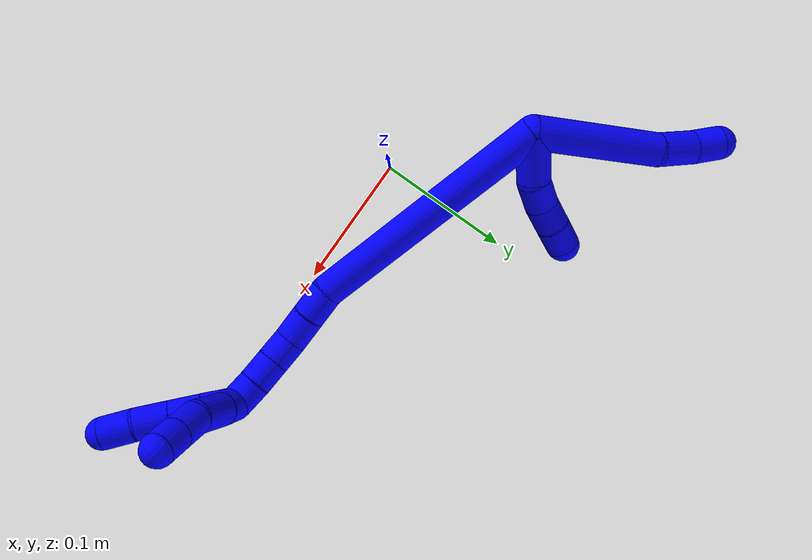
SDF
<sdf version="1.7">
 <world name="default">
  <model name="photoneo_s_sensor">
   <static>1</static>
   <pose>0 0 2 1.57079 1.57079 3.14159</pose>
   <link name="link">
    <inertial><mass>0.1</mass></inertial>
    <sensor name="sensor" type="depth">
     <update_rate>30</update_rate>
     <camera>
      <horizontal_fov>1.22</horizontal_fov>
      <image><width>1920</width><height>1200</height><format>B8G8R8</format></image>
      <clip><near>0.1</near><far>4</far></clip>
      <depth_camera><output>points</output></depth_camera>
     </camera>
     <plugin name="camera_plugin" filename="libgazebo_ros_depth_camera.so">
      <baseline>0.2</baseline>
      <alwaysOn>1</alwaysOn>
      <updateRate>0.0</updateRate>
      <cameraName>camera_ir</cameraName>
      <imageTopicName>/camera/color/image_raw</imageTopicName>
      <cameraInfoTopicName>/camera/color/camera_info</cameraInfoTopicName>
      <depthImageTopicName>/camera/depth/image_raw</depthImageTopicName>
      <depthImageCameraInfoTopicName>/camera/depth/camera_info</depthImageCameraInfoTopicName>
      <pointCloudTopicName>/camera/depth/points</pointCloudTopicName>
      <frameName>fr_optical</frameName>
      <pointCloudCutoff>0.1</pointCloudCutoff>
      <pointCloudCutoffMax>2.0</pointCloudCutoffMax>
      <distortionK1>0</distortionK1>
      <distortionK2>0</distortionK2>
      <distortionK3>0</distortionK3>
      <distortionT1>0</distortionT1>
      <distortionT2>0</distortionT2>
      <CxPrime>0</CxPrime>
      <Cx>0</Cx>
      <Cy>0</Cy>
      <focalLength>0</focalLength>
      <hackBaseline>0</hackBaseline>
     </plugin>
    </sensor>
   </link>
  </model>
  <model name="bin">
   <static>1</static>
   <link name="bottom">
    <collision name="collision-bottom">
     <pose>0 0 -0.01 0 -0 0</pose>
     <geometry><box><size>0.8 0.6 0.02</size></box></geometry>
     <surface>
      <friction><ode><mu>100</mu><mu2>100</mu2></ode></friction>
      <contact><collide_bitmask>65535</collide_bitmask></contact>
     </surface>
    </collision>
   </link>
   <link name="west_wall">
    <collision name="collision-west_wall">
     <pose>-0.41 0 0.1 0 -0 0</pose>
     <geometry><box><size>0.02 0.6 0.2</size></box></geometry>
     <surface>
      <friction><ode><mu>100</mu><mu2>100</mu2></ode></friction>
      <contact><collide_bitmask>65535</collide_bitmask></contact>
     </surface>
    </collision>
   </link>
   <link name="east_wall">
    <collision name="collision-east_wall">
     <pose>0.41 0 0.1 0 -0 0</pose>
     <geometry><box><size>0.02 0.6 0.2</size></box></geometry>
     <surface>
      <friction><ode><mu>100</mu><mu2>100</mu2></ode></friction>
      <contact><collide_bitmask>65535</collide_bitmask></contact>
     </surface>
    </collision>
   </link>
   <link name="south_wall">
    <collision name="collision-south_wall">
     <pose>0 -0.31 0.1 0 -0 0</pose>
     <geometry><box><size>0.8 0.02 0.2</size></box></geometry>
     <surface>
      <friction><ode><mu>100</mu><mu2>100</mu2></ode></friction>
      <contact><collide_bitmask>65535</collide_bitmask></contact>
     </surface>
    </collision>
   </link>
   <link name="north_wall">
    <collision name="collision-north_wall">
     <pose>0 0.31 0.1 0 -0 0</pose>
     <geometry><box><size>0.8 0.02 0.2</size></box></geometry>
     <surface>
      <friction><ode><mu>100</mu><mu2>100</mu2></ode></friction>
      <contact><collide_bitmask>65535</collide_bitmask></contact>
     </surface>
    </collision>
   </link>
  </model>
  <model name="1">
   <static>0</static>
   <link name="1">
    <collision name="collision-cylinder-e_1_2_8">
     <pose>-0.015491 0.024906 0.03885 -0.570083 -0.323855 0.095661</pose>
     <geometry><cylinder><radius>0.0125</radius><length>0.097358</length></cylinder></geometry>
     <surface>
      <friction><ode><mu>1.16</mu><mu2>1.16</mu2><slip1>0</slip1><slip2>0</slip2></ode></friction>
      <contact><ode><kp>1e+06</kp><kd>1</kd><max_vel>0</max_vel><min_depth>0.001</min_depth></ode></contact>
     </surface>
    </collision>
    <visual name="visual-cylinder-e_1_2_8">
     <pose>-0.015491 0.024906 0.03885 -0.570083 -0.323855 0.095661</pose>
     <geometry><cylinder><radius>0.0125</radius><length>0.097358</length></cylinder></geometry>
     <material><ambient>0 0 1 1</ambient></material>
    </visual>
    <collision name="collision-cylinder-e_2_8_9">
     <pose>-0.035697 0.060251 0.087541 -0.814852 -0.317571 0.138</pose>
     <geometry><cylinder><radius>0.0125</radius><length>0.0302</length></cylinder></geometry>
     <surface>
      <friction><ode><mu>1.16</mu><mu2>1.16</mu2><slip1>0</slip1><slip2>0</slip2></ode></friction>
      <contact><ode><kp>1e+06</kp><kd>1</kd><max_vel>0</max_vel><min_depth>0.001</min_depth></ode></contact>
     </surface>
    </collision>
    <visual name="visual-cylinder-e_2_8_9">
     <pose>-0.035697 0.060251 0.087541 -0.814852 -0.317571 0.138</pose>
     <geometry><cylinder><radius>0.0125</radius><length>0.0302</length></cylinder></geometry>
     <material><ambient>0 0 1 1</ambient></material>
    </visual>
    <collision name="collision-cylinder-e_3_9_6">
     <pose>-0.045819 0.077765 0.104208 -0.803369 -0.502799 0.217336</pose>
     <geometry><cylinder><radius>0.0125</radius><length>0.022442</length></cylinder></geometry>
     <surface>
      <friction><ode><mu>1.16</mu><mu2>1.16</mu2><slip1>0</slip1><slip2>0</slip2></ode></friction>
      <contact><ode><kp>1e+06</kp><kd>1</kd><max_vel>0</max_vel><min_depth>0.001</min_depth></ode></contact>
     </surface>
    </collision>
    <visual name="visual-cylinder-e_3_9_6">
     <pose>-0.045819 0.077765 0.104208 -0.803369 -0.502799 0.217336</pose>
     <geometry><cylinder><radius>0.0125</radius><length>0.022442</length></cylinder></geometry>
     <material><ambient>0 0 1 1</ambient></material>
    </visual>
    <collision name="collision-cylinder-e_1_2_10">
     <pose>0.01291 -0.002465 0.01303 0.186995 0.771997 0.076177</pose>
     <geometry><cylinder><radius>0.0125</radius><length>0.037015</length></cylinder></geometry>
     <surface>
      <friction><ode><mu>1.16</mu><mu2>1.16</mu2><slip1>0</slip1><slip2>0</slip2></ode></friction>
      <contact><ode><kp>1e+06</kp><kd>1</kd><max_vel>0</max_vel><min_depth>0.001</min_depth></ode></contact>
     </surface>
    </collision>
    <visual name="visual-cylinder-e_1_2_10">
     <pose>0.01291 -0.002465 0.01303 0.186995 0.771997 0.076177</pose>
     <geometry><cylinder><radius>0.0125</radius><length>0.037015</length></cylinder></geometry>
     <material><ambient>0 0 1 1</ambient></material>
    </visual>
    <collision name="collision-cylinder-e_2_10_11">
     <pose>0.032133 -0.003115 0.035069 -0.19888 0.601834 -0.061905</pose>
     <geometry><cylinder><radius>0.0125</radius><length>0.0223</length></cylinder></geometry>
     <surface>
      <friction><ode><mu>1.16</mu><mu2>1.16</mu2><slip1>0</slip1><slip2>0</slip2></ode></friction>
      <contact><ode><kp>1e+06</kp><kd>1</kd><max_vel>0</max_vel><min_depth>0.001</min_depth></ode></contact>
     </surface>
    </collision>
    <visual name="visual-cylinder-e_2_10_11">
     <pose>0.032133 -0.003115 0.035069 -0.19888 0.601834 -0.061905</pose>
     <geometry><cylinder><radius>0.0125</radius><length>0.0223</length></cylinder></geometry>
     <material><ambient>0 0 1 1</ambient></material>
    </visual>
    <collision name="collision-cylinder-e_3_11_12">
     <pose>0.042526 -0.000275 0.053169 -0.112163 0.419547 -0.023904</pose>
     <geometry><cylinder><radius>0.0125</radius><length>0.020033</length></cylinder></geometry>
     <surface>
      <friction><ode><mu>1.16</mu><mu2>1.16</mu2><slip1>0</slip1><slip2>0</slip2></ode></friction>
      <contact><ode><kp>1e+06</kp><kd>1</kd><max_vel>0</max_vel><min_depth>0.001</min_depth></ode></contact>
     </surface>
    </collision>
    <visual name="visual-cylinder-e_3_11_12">
     <pose>0.042526 -0.000275 0.053169 -0.112163 0.419547 -0.023904</pose>
     <geometry><cylinder><radius>0.0125</radius><length>0.020033</length></cylinder></geometry>
     <material><ambient>0 0 1 1</ambient></material>
    </visual>
    <collision name="collision-cylinder-e_4_12_5">
     <pose>0.051206 0.002717 0.071292 -0.214578 0.461731 -0.050621</pose>
     <geometry><cylinder><radius>0.0125</radius><length>0.020653</length></cylinder></geometry>
     <surface>
      <friction><ode><mu>1.16</mu><mu2>1.16</mu2><slip1>0</slip1><slip2>0</slip2></ode></friction>
      <contact><ode><kp>1e+06</kp><kd>1</kd><max_vel>0</max_vel><min_depth>0.001</min_depth></ode></contact>
     </surface>
    </collision>
    <visual name="visual-cylinder-e_4_12_5">
     <pose>0.051206 0.002717 0.071292 -0.214578 0.461731 -0.050621</pose>
     <geometry><cylinder><radius>0.0125</radius><length>0.020653</length></cylinder></geometry>
     <material><ambient>0 0 1 1</ambient></material>
    </visual>
    <collision name="collision-cylinder-e_1_2_13">
     <pose>0.083445 -0.044527 -0.012601 1.84658 1.06445 1.32324</pose>
     <geometry><cylinder><radius>0.0125</radius><length>0.190834</length></cylinder></geometry>
     <surface>
      <friction><ode><mu>1.16</mu><mu2>1.16</mu2><slip1>0</slip1><slip2>0</slip2></ode></friction>
      <contact><ode><kp>1e+06</kp><kd>1</kd><max_vel>0</max_vel><min_depth>0.001</min_depth></ode></contact>
     </surface>
    </collision>
    <visual name="visual-cylinder-e_1_2_13">
     <pose>0.083445 -0.044527 -0.012601 1.84658 1.06445 1.32324</pose>
     <geometry><cylinder><radius>0.0125</radius><length>0.190834</length></cylinder></geometry>
     <material><ambient>0 0 1 1</ambient></material>
    </visual>
    <collision name="collision-cylinder-e_2_13_14">
     <pose>0.176316 -0.09591 -0.023891 1.38191 0.933424 0.789543</pose>
     <geometry><cylinder><radius>0.0125</radius><length>0.023459</length></cylinder></geometry>
     <surface>
      <friction><ode><mu>1.16</mu><mu2>1.16</mu2><slip1>0</slip1><slip2>0</slip2></ode></friction>
      <contact><ode><kp>1e+06</kp><kd>1</kd><max_vel>0</max_vel><min_depth>0.001</min_depth></ode></contact>
     </surface>
    </collision>
    <visual name="visual-cylinder-e_2_13_14">
     <pose>0.176316 -0.09591 -0.023891 1.38191 0.933424 0.789543</pose>
     <geometry><cylinder><radius>0.0125</radius><length>0.023459</length></cylinder></geometry>
     <material><ambient>0 0 1 1</ambient></material>
    </visual>
    <collision name="collision-cylinder-e_3_14_15">
     <pose>0.195504 -0.109106 -0.021187 1.35439 0.983881 0.813657</pose>
     <geometry><cylinder><radius>0.0125</radius><length>0.023447</length></cylinder></geometry>
     <surface>
      <friction><ode><mu>1.16</mu><mu2>1.16</mu2><slip1>0</slip1><slip2>0</slip2></ode></friction>
      <contact><ode><kp>1e+06</kp><kd>1</kd><max_vel>0</max_vel><min_depth>0.001</min_depth></ode></contact>
     </surface>
    </collision>
    <visual name="visual-cylinder-e_3_14_15">
     <pose>0.195504 -0.109106 -0.021187 1.35439 0.983881 0.813657</pose>
     <geometry><cylinder><radius>0.0125</radius><length>0.023447</length></cylinder></geometry>
     <material><ambient>0 0 1 1</ambient></material>
    </visual>
    <collision name="collision-cylinder-e_4_15_16">
     <pose>0.211563 -0.123522 -0.019413 1.52383 0.66182 0.633478</pose>
     <geometry><cylinder><radius>0.0125</radius><length>0.020494</length></cylinder></geometry>
     <surface>
      <friction><ode><mu>1.16</mu><mu2>1.16</mu2><slip1>0</slip1><slip2>0</slip2></ode></friction>
      <contact><ode><kp>1e+06</kp><kd>1</kd><max_vel>0</max_vel><min_depth>0.001</min_depth></ode></contact>
     </surface>
    </collision>
    <visual name="visual-cylinder-e_4_15_16">
     <pose>0.211563 -0.123522 -0.019413 1.52383 0.66182 0.633478</pose>
     <geometry><cylinder><radius>0.0125</radius><length>0.020494</length></cylinder></geometry>
     <material><ambient>0 0 1 1</ambient></material>
    </visual>
    <collision name="collision-cylinder-e_5_16_17">
     <pose>0.224154 -0.139649 -0.018647 1.52288 0.662856 0.633913</pose>
     <geometry><cylinder><radius>0.0125</radius><length>0.020456</length></cylinder></geometry>
     <surface>
      <friction><ode><mu>1.16</mu><mu2>1.16</mu2><slip1>0</slip1><slip2>0</slip2></ode></friction>
      <contact><ode><kp>1e+06</kp><kd>1</kd><max_vel>0</max_vel><min_depth>0.001</min_depth></ode></contact>
     </surface>
    </collision>
    <visual name="visual-cylinder-e_5_16_17">
     <pose>0.224154 -0.139649 -0.018647 1.52288 0.662856 0.633913</pose>
     <geometry><cylinder><radius>0.0125</radius><length>0.020456</length></cylinder></geometry>
     <material><ambient>0 0 1 1</ambient></material>
    </visual>
    <collision name="collision-cylinder-e_6_17_1">
     <pose>0.237454 -0.155729 -0.018363 1.58344 0.717521 0.725877</pose>
     <geometry><cylinder><radius>0.0125</radius><length>0.02131</length></cylinder></geometry>
     <surface>
      <friction><ode><mu>1.16</mu><mu2>1.16</mu2><slip1>0</slip1><slip2>0</slip2></ode></friction>
      <contact><ode><kp>1e+06</kp><kd>1</kd><max_vel>0</max_vel><min_depth>0.001</min_depth></ode></contact>
     </surface>
    </collision>
    <visual name="visual-cylinder-e_6_17_1">
     <pose>0.237454 -0.155729 -0.018363 1.58344 0.717521 0.725877</pose>
     <geometry><cylinder><radius>0.0125</radius><length>0.02131</length></cylinder></geometry>
     <material><ambient>0 0 1 1</ambient></material>
    </visual>
    <collision name="collision-cylinder-e_1_1_18">
     <pose>0.24 -0.172577 -0.021816 1.93392 -0.441505 -0.629063</pose>
     <geometry><cylinder><radius>0.0125</radius><length>0.020874</length></cylinder></geometry>
     <surface>
      <friction><ode><mu>1.16</mu><mu2>1.16</mu2><slip1>0</slip1><slip2>0</slip2></ode></friction>
      <contact><ode><kp>1e+06</kp><kd>1</kd><max_vel>0</max_vel><min_depth>0.001</min_depth></ode></contact>
     </surface>
    </collision>
    <visual name="visual-cylinder-e_1_1_18">
     <pose>0.24 -0.172577 -0.021816 1.93392 -0.441505 -0.629063</pose>
     <geometry><cylinder><radius>0.0125</radius><length>0.020874</length></cylinder></geometry>
     <material><ambient>0 0 1 1</ambient></material>
    </visual>
    <collision name="collision-cylinder-e_2_18_19">
     <pose>0.228461 -0.195511 -0.031409 1.98716 -0.430148 -0.647333</pose>
     <geometry><cylinder><radius>0.0125</radius><length>0.033955</length></cylinder></geometry>
     <surface>
      <friction><ode><mu>1.16</mu><mu2>1.16</mu2><slip1>0</slip1><slip2>0</slip2></ode></friction>
      <contact><ode><kp>1e+06</kp><kd>1</kd><max_vel>0</max_vel><min_depth>0.001</min_depth></ode></contact>
     </surface>
    </collision>
    <visual name="visual-cylinder-e_2_18_19">
     <pose>0.228461 -0.195511 -0.031409 1.98716 -0.430148 -0.647333</pose>
     <geometry><cylinder><radius>0.0125</radius><length>0.033955</length></cylinder></geometry>
     <material><ambient>0 0 1 1</ambient></material>
    </visual>
    <collision name="collision-cylinder-e_3_19_20">
     <pose>0.218951 -0.221263 -0.039636 1.73985 -0.20295 -0.240193</pose>
     <geometry><cylinder><radius>0.0125</radius><length>0.02411</length></cylinder></geometry>
     <surface>
      <friction><ode><mu>1.16</mu><mu2>1.16</mu2><slip1>0</slip1><slip2>0</slip2></ode></friction>
      <contact><ode><kp>1e+06</kp><kd>1</kd><max_vel>0</max_vel><min_depth>0.001</min_depth></ode></contact>
     </surface>
    </collision>
    <visual name="visual-cylinder-e_3_19_20">
     <pose>0.218951 -0.221263 -0.039636 1.73985 -0.20295 -0.240193</pose>
     <geometry><cylinder><radius>0.0125</radius><length>0.02411</length></cylinder></geometry>
     <material><ambient>0 0 1 1</ambient></material>
    </visual>
    <collision name="collision-cylinder-e_4_20_4">
     <pose>0.214417 -0.243084 -0.043295 1.7336 -0.201168 -0.236601</pose>
     <geometry><cylinder><radius>0.0125</radius><length>0.021061</length></cylinder></geometry>
     <surface>
      <friction><ode><mu>1.16</mu><mu2>1.16</mu2><slip1>0</slip1><slip2>0</slip2></ode></friction>
      <contact><ode><kp>1e+06</kp><kd>1</kd><max_vel>0</max_vel><min_depth>0.001</min_depth></ode></contact>
     </surface>
    </collision>
    <visual name="visual-cylinder-e_4_20_4">
     <pose>0.214417 -0.243084 -0.043295 1.7336 -0.201168 -0.236601</pose>
     <geometry><cylinder><radius>0.0125</radius><length>0.021061</length></cylinder></geometry>
     <material><ambient>0 0 1 1</ambient></material>
    </visual>
    <collision name="collision-cylinder-e_1_1_21">
     <pose>0.25156 -0.170139 -0.025509 2.40547 0.641487 1.42224</pose>
     <geometry><cylinder><radius>0.0125</radius><length>0.023731</length></cylinder></geometry>
     <surface>
      <friction><ode><mu>1.16</mu><mu2>1.16</mu2><slip1>0</slip1><slip2>0</slip2></ode></friction>
      <contact><ode><kp>1e+06</kp><kd>1</kd><max_vel>0</max_vel><min_depth>0.001</min_depth></ode></contact>
     </surface>
    </collision>
    <visual name="visual-cylinder-e_1_1_21">
     <pose>0.25156 -0.170139 -0.025509 2.40547 0.641487 1.42224</pose>
     <geometry><cylinder><radius>0.0125</radius><length>0.023731</length></cylinder></geometry>
     <material><ambient>0 0 1 1</ambient></material>
    </visual>
    <collision name="collision-cylinder-e_2_21_22">
     <pose>0.265883 -0.183142 -0.039618 2.3886 0.641039 1.39693</pose>
     <geometry><cylinder><radius>0.0125</radius><length>0.024156</length></cylinder></geometry>
     <surface>
      <friction><ode><mu>1.16</mu><mu2>1.16</mu2><slip1>0</slip1><slip2>0</slip2></ode></friction>
      <contact><ode><kp>1e+06</kp><kd>1</kd><max_vel>0</max_vel><min_depth>0.001</min_depth></ode></contact>
     </surface>
    </collision>
    <visual name="visual-cylinder-e_2_21_22">
     <pose>0.265883 -0.183142 -0.039618 2.3886 0.641039 1.39693</pose>
     <geometry><cylinder><radius>0.0125</radius><length>0.024156</length></cylinder></geometry>
     <material><ambient>0 0 1 1</ambient></material>
    </visual>
    <collision name="collision-cylinder-e_3_22_23">
     <pose>0.281147 -0.197044 -0.054434 2.38753 0.647302 1.40566</pose>
     <geometry><cylinder><radius>0.0125</radius><length>0.026668</length></cylinder></geometry>
     <surface>
      <friction><ode><mu>1.16</mu><mu2>1.16</mu2><slip1>0</slip1><slip2>0</slip2></ode></friction>
      <contact><ode><kp>1e+06</kp><kd>1</kd><max_vel>0</max_vel><min_depth>0.001</min_depth></ode></contact>
     </surface>
    </collision>
    <visual name="visual-cylinder-e_3_22_23">
     <pose>0.281147 -0.197044 -0.054434 2.38753 0.647302 1.40566</pose>
     <geometry><cylinder><radius>0.0125</radius><length>0.026668</length></cylinder></geometry>
     <material><ambient>0 0 1 1</ambient></material>
    </visual>
    <collision name="collision-cylinder-e_4_23_3">
     <pose>0.298364 -0.21029 -0.068675 2.39823 0.805614 1.65973</pose>
     <geometry><cylinder><radius>0.0125</radius><length>0.025445</length></cylinder></geometry>
     <surface>
      <friction><ode><mu>1.16</mu><mu2>1.16</mu2><slip1>0</slip1><slip2>0</slip2></ode></friction>
      <contact><ode><kp>1e+06</kp><kd>1</kd><max_vel>0</max_vel><min_depth>0.001</min_depth></ode></contact>
     </surface>
    </collision>
    <visual name="visual-cylinder-e_4_23_3">
     <pose>0.298364 -0.21029 -0.068675 2.39823 0.805614 1.65973</pose>
     <geometry><cylinder><radius>0.0125</radius><length>0.025445</length></cylinder></geometry>
     <material><ambient>0 0 1 1</ambient></material>
    </visual>
    <collision name="collision-sphere-3">
     <pose>0.30754 -0.216254 -0.075163 0 -0 0</pose>
     <geometry><sphere><radius>0.0125</radius></sphere></geometry>
     <surface>
      <friction><ode><mu>1.16</mu><mu2>1.16</mu2><slip1>0</slip1><slip2>0</slip2></ode></friction>
      <contact><ode><kp>1e+06</kp><kd>1</kd><max_vel>0</max_vel><min_depth>0.001</min_depth></ode></contact>
     </surface>
    </collision>
    <visual name="visual-sphere-3">
     <pose>0.30754 -0.216254 -0.075163 0 -0 0</pose>
     <geometry><sphere><radius>0.0125</radius></sphere></geometry>
     <material><ambient>0 0 1 1</ambient></material>
    </visual>
    <collision name="collision-sphere-23">
     <pose>0.289188 -0.204326 -0.062187 0 -0 0</pose>
     <geometry><sphere><radius>0.0125</radius></sphere></geometry>
     <surface>
      <friction><ode><mu>1.16</mu><mu2>1.16</mu2><slip1>0</slip1><slip2>0</slip2></ode></friction>
      <contact><ode><kp>1e+06</kp><kd>1</kd><max_vel>0</max_vel><min_depth>0.001</min_depth></ode></contact>
     </surface>
    </collision>
    <visual name="visual-sphere-23">
     <pose>0.289188 -0.204326 -0.062187 0 -0 0</pose>
     <geometry><sphere><radius>0.0125</radius></sphere></geometry>
     <material><ambient>0 0 1 1</ambient></material>
    </visual>
    <collision name="collision-sphere-22">
     <pose>0.273106 -0.189762 -0.046681 0 -0 0</pose>
     <geometry><sphere><radius>0.0125</radius></sphere></geometry>
     <surface>
      <friction><ode><mu>1.16</mu><mu2>1.16</mu2><slip1>0</slip1><slip2>0</slip2></ode></friction>
      <contact><ode><kp>1e+06</kp><kd>1</kd><max_vel>0</max_vel><min_depth>0.001</min_depth></ode></contact>
     </surface>
    </collision>
    <visual name="visual-sphere-22">
     <pose>0.273106 -0.189762 -0.046681 0 -0 0</pose>
     <geometry><sphere><radius>0.0125</radius></sphere></geometry>
     <material><ambient>0 0 1 1</ambient></material>
    </visual>
    <collision name="collision-sphere-21">
     <pose>0.25866 -0.176522 -0.032554 0 -0 0</pose>
     <geometry><sphere><radius>0.0125</radius></sphere></geometry>
     <surface>
      <friction><ode><mu>1.16</mu><mu2>1.16</mu2><slip1>0</slip1><slip2>0</slip2></ode></friction>
      <contact><ode><kp>1e+06</kp><kd>1</kd><max_vel>0</max_vel><min_depth>0.001</min_depth></ode></contact>
     </surface>
    </collision>
    <visual name="visual-sphere-21">
     <pose>0.25866 -0.176522 -0.032554 0 -0 0</pose>
     <geometry><sphere><radius>0.0125</radius></sphere></geometry>
     <material><ambient>0 0 1 1</ambient></material>
    </visual>
    <collision name="collision-sphere-4">
     <pose>0.212313 -0.253265 -0.044968 0 -0 0</pose>
     <geometry><sphere><radius>0.0125</radius></sphere></geometry>
     <surface>
      <friction><ode><mu>1.16</mu><mu2>1.16</mu2><slip1>0</slip1><slip2>0</slip2></ode></friction>
      <contact><ode><kp>1e+06</kp><kd>1</kd><max_vel>0</max_vel><min_depth>0.001</min_depth></ode></contact>
     </surface>
    </collision>
    <visual name="visual-sphere-4">
     <pose>0.212313 -0.253265 -0.044968 0 -0 0</pose>
     <geometry><sphere><radius>0.0125</radius></sphere></geometry>
     <material><ambient>0 0 1 1</ambient></material>
    </visual>
    <collision name="collision-sphere-20">
     <pose>0.216521 -0.232902 -0.041623 0 -0 0</pose>
     <geometry><sphere><radius>0.0125</radius></sphere></geometry>
     <surface>
      <friction><ode><mu>1.16</mu><mu2>1.16</mu2><slip1>0</slip1><slip2>0</slip2></ode></friction>
      <contact><ode><kp>1e+06</kp><kd>1</kd><max_vel>0</max_vel><min_depth>0.001</min_depth></ode></contact>
     </surface>
    </collision>
    <visual name="visual-sphere-20">
     <pose>0.216521 -0.232902 -0.041623 0 -0 0</pose>
     <geometry><sphere><radius>0.0125</radius></sphere></geometry>
     <material><ambient>0 0 1 1</ambient></material>
    </visual>
    <collision name="collision-sphere-11">
     <pose>0.038445 -0.001299 0.044079 0 -0 0</pose>
     <geometry><sphere><radius>0.0125</radius></sphere></geometry>
     <surface>
      <friction><ode><mu>1.16</mu><mu2>1.16</mu2><slip1>0</slip1><slip2>0</slip2></ode></friction>
      <contact><ode><kp>1e+06</kp><kd>1</kd><max_vel>0</max_vel><min_depth>0.001</min_depth></ode></contact>
     </surface>
    </collision>
    <visual name="visual-sphere-11">
     <pose>0.038445 -0.001299 0.044079 0 -0 0</pose>
     <geometry><sphere><radius>0.0125</radius></sphere></geometry>
     <material><ambient>0 0 1 1</ambient></material>
    </visual>
    <collision name="collision-sphere-10">
     <pose>0.02582 -0.004931 0.026059 0 -0 0</pose>
     <geometry><sphere><radius>0.0125</radius></sphere></geometry>
     <surface>
      <friction><ode><mu>1.16</mu><mu2>1.16</mu2><slip1>0</slip1><slip2>0</slip2></ode></friction>
      <contact><ode><kp>1e+06</kp><kd>1</kd><max_vel>0</max_vel><min_depth>0.001</min_depth></ode></contact>
     </surface>
    </collision>
    <visual name="visual-sphere-10">
     <pose>0.02582 -0.004931 0.026059 0 -0 0</pose>
     <geometry><sphere><radius>0.0125</radius></sphere></geometry>
     <material><ambient>0 0 1 1</ambient></material>
    </visual>
    <collision name="collision-sphere-6">
     <pose>-0.051226 0.084841 0.111034 0 -0 0</pose>
     <geometry><sphere><radius>0.0125</radius></sphere></geometry>
     <surface>
      <friction><ode><mu>1.16</mu><mu2>1.16</mu2><slip1>0</slip1><slip2>0</slip2></ode></friction>
      <contact><ode><kp>1e+06</kp><kd>1</kd><max_vel>0</max_vel><min_depth>0.001</min_depth></ode></contact>
     </surface>
    </collision>
    <visual name="visual-sphere-6">
     <pose>-0.051226 0.084841 0.111034 0 -0 0</pose>
     <geometry><sphere><radius>0.0125</radius></sphere></geometry>
     <material><ambient>0 0 1 1</ambient></material>
    </visual>
    <collision name="collision-sphere-9">
     <pose>-0.040412 0.070688 0.097381 0 -0 0</pose>
     <geometry><sphere><radius>0.0125</radius></sphere></geometry>
     <surface>
      <friction><ode><mu>1.16</mu><mu2>1.16</mu2><slip1>0</slip1><slip2>0</slip2></ode></friction>
      <contact><ode><kp>1e+06</kp><kd>1</kd><max_vel>0</max_vel><min_depth>0.001</min_depth></ode></contact>
     </surface>
    </collision>
    <visual name="visual-sphere-9">
     <pose>-0.040412 0.070688 0.097381 0 -0 0</pose>
     <geometry><sphere><radius>0.0125</radius></sphere></geometry>
     <material><ambient>0 0 1 1</ambient></material>
    </visual>
    <collision name="collision-sphere-2">
     <geometry><sphere><radius>0.0125</radius></sphere></geometry>
     <surface>
      <friction><ode><mu>1.16</mu><mu2>1.16</mu2><slip1>0</slip1><slip2>0</slip2></ode></friction>
      <contact><ode><kp>1e+06</kp><kd>1</kd><max_vel>0</max_vel><min_depth>0.001</min_depth></ode></contact>
     </surface>
    </collision>
    <visual name="visual-sphere-2">
     <geometry><sphere><radius>0.0125</radius></sphere></geometry>
     <material><ambient>0 0 1 1</ambient></material>
    </visual>
    <collision name="collision-sphere-19">
     <pose>0.221381 -0.209624 -0.037649 0 -0 0</pose>
     <geometry><sphere><radius>0.0125</radius></sphere></geometry>
     <surface>
      <friction><ode><mu>1.16</mu><mu2>1.16</mu2><slip1>0</slip1><slip2>0</slip2></ode></friction>
      <contact><ode><kp>1e+06</kp><kd>1</kd><max_vel>0</max_vel><min_depth>0.001</min_depth></ode></contact>
     </surface>
    </collision>
    <visual name="visual-sphere-19">
     <pose>0.221381 -0.209624 -0.037649 0 -0 0</pose>
     <geometry><sphere><radius>0.0125</radius></sphere></geometry>
     <material><ambient>0 0 1 1</ambient></material>
    </visual>
    <collision name="collision-sphere-8">
     <pose>-0.030981 0.049813 0.0777 0 -0 0</pose>
     <geometry><sphere><radius>0.0125</radius></sphere></geometry>
     <surface>
      <friction><ode><mu>1.16</mu><mu2>1.16</mu2><slip1>0</slip1><slip2>0</slip2></ode></friction>
      <contact><ode><kp>1e+06</kp><kd>1</kd><max_vel>0</max_vel><min_depth>0.001</min_depth></ode></contact>
     </surface>
    </collision>
    <visual name="visual-sphere-8">
     <pose>-0.030981 0.049813 0.0777 0 -0 0</pose>
     <geometry><sphere><radius>0.0125</radius></sphere></geometry>
     <material><ambient>0 0 1 1</ambient></material>
    </visual>
    <collision name="collision-sphere-12">
     <pose>0.046606 0.000749 0.062259 0 -0 0</pose>
     <geometry><sphere><radius>0.0125</radius></sphere></geometry>
     <surface>
      <friction><ode><mu>1.16</mu><mu2>1.16</mu2><slip1>0</slip1><slip2>0</slip2></ode></friction>
      <contact><ode><kp>1e+06</kp><kd>1</kd><max_vel>0</max_vel><min_depth>0.001</min_depth></ode></contact>
     </surface>
    </collision>
    <visual name="visual-sphere-12">
     <pose>0.046606 0.000749 0.062259 0 -0 0</pose>
     <geometry><sphere><radius>0.0125</radius></sphere></geometry>
     <material><ambient>0 0 1 1</ambient></material>
    </visual>
    <collision name="collision-sphere-5">
     <pose>0.055806 0.004686 0.080325 0 -0 0</pose>
     <geometry><sphere><radius>0.0125</radius></sphere></geometry>
     <surface>
      <friction><ode><mu>1.16</mu><mu2>1.16</mu2><slip1>0</slip1><slip2>0</slip2></ode></friction>
      <contact><ode><kp>1e+06</kp><kd>1</kd><max_vel>0</max_vel><min_depth>0.001</min_depth></ode></contact>
     </surface>
    </collision>
    <visual name="visual-sphere-5">
     <pose>0.055806 0.004686 0.080325 0 -0 0</pose>
     <geometry><sphere><radius>0.0125</radius></sphere></geometry>
     <material><ambient>0 0 1 1</ambient></material>
    </visual>
    <collision name="collision-sphere-13">
     <pose>0.16689 -0.089054 -0.025202 0 -0 0</pose>
     <geometry><sphere><radius>0.0125</radius></sphere></geometry>
     <surface>
      <friction><ode><mu>1.16</mu><mu2>1.16</mu2><slip1>0</slip1><slip2>0</slip2></ode></friction>
      <contact><ode><kp>1e+06</kp><kd>1</kd><max_vel>0</max_vel><min_depth>0.001</min_depth></ode></contact>
     </surface>
    </collision>
    <visual name="visual-sphere-13">
     <pose>0.16689 -0.089054 -0.025202 0 -0 0</pose>
     <geometry><sphere><radius>0.0125</radius></sphere></geometry>
     <material><ambient>0 0 1 1</ambient></material>
    </visual>
    <collision name="collision-sphere-14">
     <pose>0.185743 -0.102765 -0.022581 0 -0 0</pose>
     <geometry><sphere><radius>0.0125</radius></sphere></geometry>
     <surface>
      <friction><ode><mu>1.16</mu><mu2>1.16</mu2><slip1>0</slip1><slip2>0</slip2></ode></friction>
      <contact><ode><kp>1e+06</kp><kd>1</kd><max_vel>0</max_vel><min_depth>0.001</min_depth></ode></contact>
     </surface>
    </collision>
    <visual name="visual-sphere-14">
     <pose>0.185743 -0.102765 -0.022581 0 -0 0</pose>
     <geometry><sphere><radius>0.0125</radius></sphere></geometry>
     <material><ambient>0 0 1 1</ambient></material>
    </visual>
    <collision name="collision-sphere-15">
     <pose>0.205266 -0.115447 -0.019793 0 -0 0</pose>
     <geometry><sphere><radius>0.0125</radius></sphere></geometry>
     <surface>
      <friction><ode><mu>1.16</mu><mu2>1.16</mu2><slip1>0</slip1><slip2>0</slip2></ode></friction>
      <contact><ode><kp>1e+06</kp><kd>1</kd><max_vel>0</max_vel><min_depth>0.001</min_depth></ode></contact>
     </surface>
    </collision>
    <visual name="visual-sphere-15">
     <pose>0.205266 -0.115447 -0.019793 0 -0 0</pose>
     <geometry><sphere><radius>0.0125</radius></sphere></geometry>
     <material><ambient>0 0 1 1</ambient></material>
    </visual>
    <collision name="collision-sphere-16">
     <pose>0.217861 -0.131597 -0.019034 0 -0 0</pose>
     <geometry><sphere><radius>0.0125</radius></sphere></geometry>
     <surface>
      <friction><ode><mu>1.16</mu><mu2>1.16</mu2><slip1>0</slip1><slip2>0</slip2></ode></friction>
      <contact><ode><kp>1e+06</kp><kd>1</kd><max_vel>0</max_vel><min_depth>0.001</min_depth></ode></contact>
     </surface>
    </collision>
    <visual name="visual-sphere-16">
     <pose>0.217861 -0.131597 -0.019034 0 -0 0</pose>
     <geometry><sphere><radius>0.0125</radius></sphere></geometry>
     <material><ambient>0 0 1 1</ambient></material>
    </visual>
    <collision name="collision-sphere-17">
     <pose>0.230448 -0.147702 -0.018261 0 -0 0</pose>
     <geometry><sphere><radius>0.0125</radius></sphere></geometry>
     <surface>
      <friction><ode><mu>1.16</mu><mu2>1.16</mu2><slip1>0</slip1><slip2>0</slip2></ode></friction>
      <contact><ode><kp>1e+06</kp><kd>1</kd><max_vel>0</max_vel><min_depth>0.001</min_depth></ode></contact>
     </surface>
    </collision>
    <visual name="visual-sphere-17">
     <pose>0.230448 -0.147702 -0.018261 0 -0 0</pose>
     <geometry><sphere><radius>0.0125</radius></sphere></geometry>
     <material><ambient>0 0 1 1</ambient></material>
    </visual>
    <collision name="collision-sphere-1">
     <pose>0.24446 -0.163757 -0.018464 0 -0 0</pose>
     <geometry><sphere><radius>0.0125</radius></sphere></geometry>
     <surface>
      <friction><ode><mu>1.16</mu><mu2>1.16</mu2><slip1>0</slip1><slip2>0</slip2></ode></friction>
      <contact><ode><kp>1e+06</kp><kd>1</kd><max_vel>0</max_vel><min_depth>0.001</min_depth></ode></contact>
     </surface>
    </collision>
    <visual name="visual-sphere-1">
     <pose>0.24446 -0.163757 -0.018464 0 -0 0</pose>
     <geometry><sphere><radius>0.0125</radius></sphere></geometry>
     <material><ambient>0 0 1 1</ambient></material>
    </visual>
    <collision name="collision-sphere-18">
     <pose>0.23554 -0.181398 -0.025168 0 -0 0</pose>
     <geometry><sphere><radius>0.0125</radius></sphere></geometry>
     <surface>
      <friction><ode><mu>1.16</mu><mu2>1.16</mu2><slip1>0</slip1><slip2>0</slip2></ode></friction>
      <contact><ode><kp>1e+06</kp><kd>1</kd><max_vel>0</max_vel><min_depth>0.001</min_depth></ode></contact>
     </surface>
    </collision>
    <visual name="visual-sphere-18">
     <pose>0.23554 -0.181398 -0.025168 0 -0 0</pose>
     <geometry><sphere><radius>0.0125</radius></sphere></geometry>
     <material><ambient>0 0 1 1</ambient></material>
    </visual>
    <inertial>
     <pose>0.117545 -0.074527 -0.000289 0 -0 0</pose>
     <mass>0.75</mass>
     <inertia>
      <ixx>0.000485</ixx>
      <ixy>0</ixy>
      <ixz>0</ixz>
      <iyy>0.000803</iyy>
      <iyz>0</iyz>
      <izz>-0.000245</izz>
     </inertia>
    </inertial>
   </link>
   <pose>-0.074166 0.07197 0.064122 -1.76807 0.739486 -0.266492</pose>
  </model>
 </world>
</sdf>
